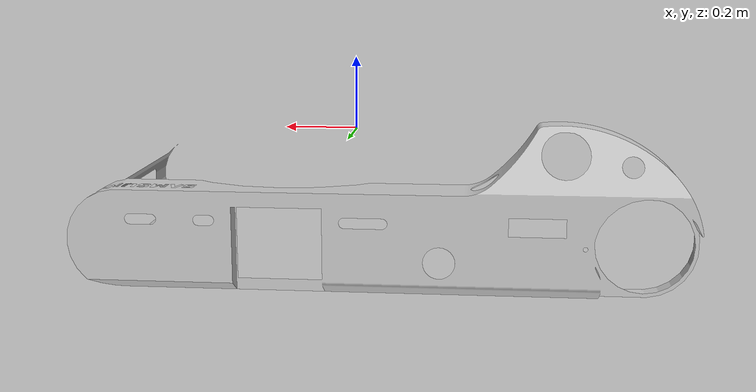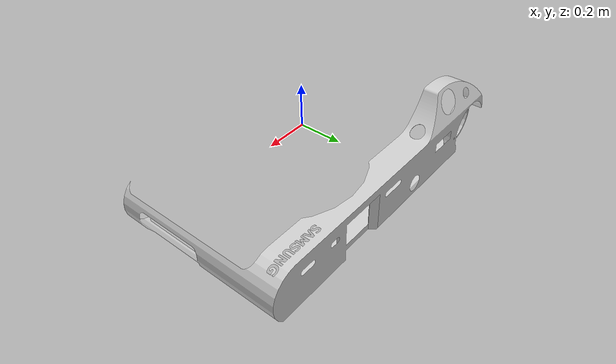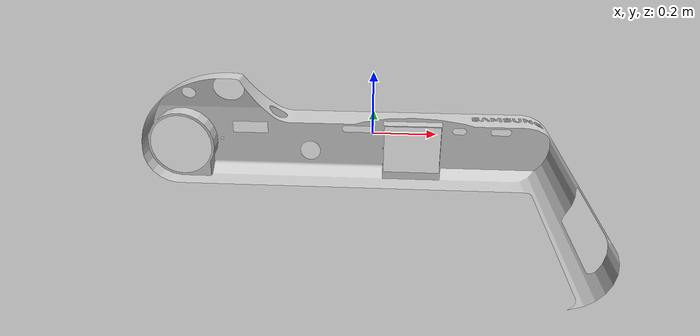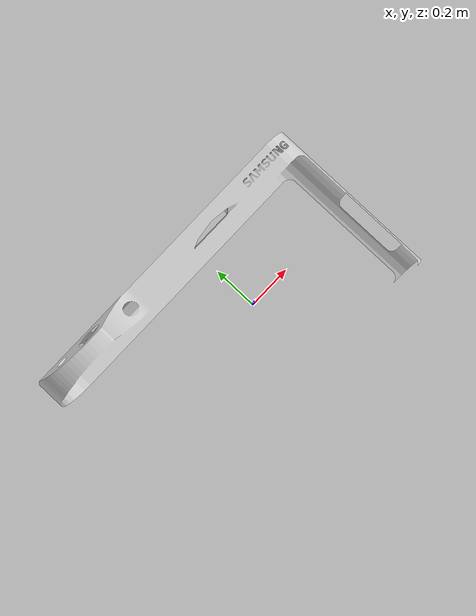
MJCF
<mujoco model="original-28">
  <default>
    <default class="visual">
      <geom group="2" type="mesh" contype="0" conaffinity="0"/>
    </default>
    <default class="collision">
      <geom group="3" type="mesh"/>
    </default>
  </default>
  <asset>
    <material name="material_0_0" specular="0.06666666666666667" shininess="0.03" rgba="0.8 0.8 0.8 1"/>
    <mesh file="original-28.obj"/>
  </asset>
  <worldbody>
    <body name="original-28">
      <geom material="material_0_0" mesh="original-28" class="visual"/>
      <geom mesh="original-28" class="collision"/>
    </body>
  </worldbody>
</mujoco>
